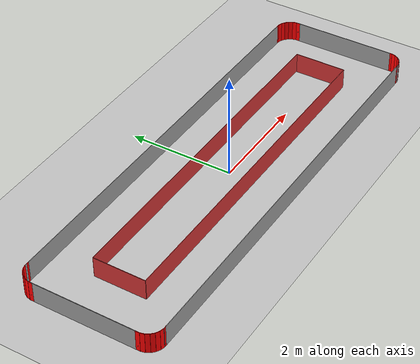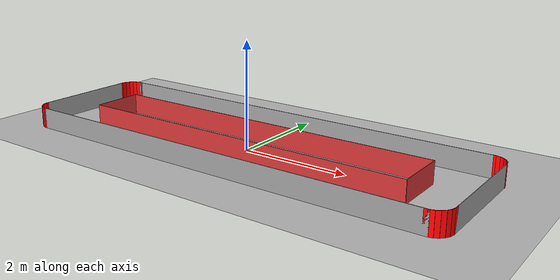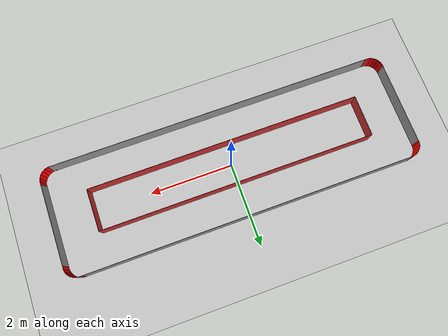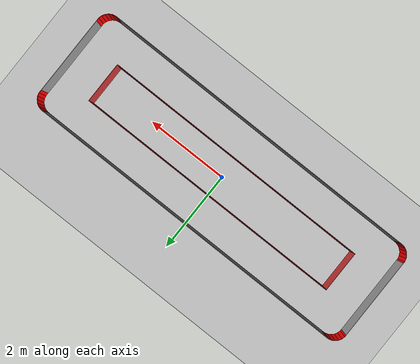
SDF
<?xml version="1.0" ?>
<sdf version="1.6">
  <world name="loop_world">
  <plugin name="gazebo_ros_factory" filename="libgazebo_ros_factory.so"/>
    <!-- 地面と太陽 -->
    <include>
      <uri>model://ground_plane</uri>
    </include>
    <include>
      <uri>model://sun</uri>
    </include>

<include>
  <uri>model://quarter_arc_wall</uri>
  <name>quarter_arc_wall_NE</name>
  <pose>3.95 1.0 0 0 0 1.57</pose>
</include>
<include>
  <uri>model://quarter_arc_wall</uri>
  <name>quarter_arc_wall_SW</name>
  <pose>-3.95 1.0 0 0 0 3.14</pose>
</include>
<include>
  <uri>model://quarter_arc_wall</uri>
  <name>quarter_arc_wall_SE</name>
  <pose>3.95 -1.0 0 0 0 0</pose>
</include>
<include>
  <uri>model://quarter_arc_wall</uri>
  <name>quarter_arc_wall_NW</name>
  <pose>-3.95 -1.0 0 0 0 -1.57</pose>
</include>
    <!-- ========================
         外枠壁（グレー）
         ======================== -->
    <model name="outer_wall_north">
      <static>true</static>
      <link name="link">
        <collision name="collision">
          <geometry><box><size>8 0.01 0.4</size></box></geometry>
        </collision>
        <visual name="visual">
          <geometry><box><size>8 0.01 0.4</size></box></geometry>
          <material><ambient>0.6 0.6 0.6 1</ambient></material>
        </visual>
        <pose>0 1.3 0.2 0 0 0</pose>
      </link>
    </model>

    <model name="outer_wall_south">
      <static>true</static>
      <link name="link">
        <collision name="collision">
          <geometry><box><size>8 0.01 0.4</size></box></geometry>
        </collision>
        <visual name="visual">
          <geometry><box><size>8 0.01 0.4</size></box></geometry>
          <material><ambient>0.6 0.6 0.6 1</ambient></material>
        </visual>
        <pose>0 -1.3 0.2 0 0 0</pose>
      </link>
    </model>

    <model name="outer_wall_east">
      <static>true</static>
      <link name="link">
        <collision name="collision">
          <geometry><box><size>0.01 2.0 0.4</size></box></geometry>
        </collision>
        <visual name="visual">
          <geometry><box><size>0.01 2.0 0.4</size></box></geometry>
          <material><ambient>0.6 0.6 0.6 1</ambient></material>
        </visual>
        <pose>4.25 0 0.2 0 0 0</pose>
      </link>
    </model>

    <model name="outer_wall_west">
      <static>true</static>
      <link name="link">
        <collision name="collision">
          <geometry><box><size>0.01 2.0 0.4</size></box></geometry>
        </collision>
        <visual name="visual">
          <geometry><box><size>0.01 2.0 0.4</size></box></geometry>
          <material><ambient>0.6 0.6 0.6 1</ambient></material>
        </visual>
        <pose>-4.25 0 0.2 0 0 0</pose>
      </link>
    </model>

    <!-- ========================
         内枠壁（赤系）
         ======================== -->
    <model name="inner_wall_north">
      <static>true</static>
      <link name="link">
        <collision name="collision">
          <geometry><box><size>6.6 0.01 0.4</size></box></geometry>
        </collision>
        <visual name="visual">
          <geometry><box><size>6.6 0.01 0.4</size></box></geometry>
          <material><ambient>0.8 0.2 0.2 1</ambient></material>
        </visual>
        <pose>0 0.5 0.2 0 0 0</pose>
      </link>
    </model>

    <model name="inner_wall_south">
      <static>true</static>
      <link name="link">
        <collision name="collision">
          <geometry><box><size>6.6 0.01 0.4</size></box></geometry>
        </collision>
        <visual name="visual">
          <geometry><box><size>6.6 0.01 0.4</size></box></geometry>
          <material><ambient>0.8 0.2 0.2 1</ambient></material>
        </visual>
        <pose>0 -0.5 0.2 0 0 0</pose>
      </link>
    </model>

    <model name="inner_wall_east">
      <static>true</static>
      <link name="link">
        <collision name="collision">
          <geometry><box><size>0.01 1.0 0.4</size></box></geometry>
        </collision>
        <visual name="visual">
          <geometry><box><size>0.01 1.0 0.4</size></box></geometry>
          <material><ambient>0.8 0.2 0.2 1</ambient></material>
        </visual>
        <pose>3.3 0 0.2 0 0 0</pose>
      </link>
    </model>

    <model name="inner_wall_west">
      <static>true</static>
      <link name="link">
        <collision name="collision">
          <geometry><box><size>0.01 1.0 0.4</size></box></geometry>
        </collision>
        <visual name="visual">
          <geometry><box><size>0.01 1.0 0.4</size></box></geometry>
          <material><ambient>0.8 0.2 0.2 1</ambient></material>
        </visual>
        <pose>-3.3 0 0.2 0 0 0</pose>
      </link>
    </model>

  </world>
</sdf>

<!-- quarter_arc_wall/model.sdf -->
<sdf version="1.6">
  <model name="quarter_arc_wall">
    <static>true</static>

    🔽ここに貼る
    <link name="arc_link">

  <!-- 正確に接続する 1/4円弧 -->
  <!-- 7ピース、弧長 = 板長 -->
  <visual name="arc_piece_0">
    <pose>0.000000 -0.300000 0.2 0 0 0</pose>
    <geometry><box><size>0.0785 0.01 0.4</size></box></geometry>
    <material><ambient>1 0 0 1</ambient></material>
  </visual>
  <collision name="arc_piece_0">
    <pose>0.000000 -0.300000 0.2 0 0 0</pose>
    <geometry><box><size>0.0785 0.01 0.4</size></box></geometry>
  </collision>

  <visual name="arc_piece_1">
    <pose>0.077645 -0.290211 0.2 0 0 0.261799</pose>
    <geometry><box><size>0.0785 0.01 0.4</size></box></geometry>
    <material><ambient>1 0 0 1</ambient></material>
  </visual>
  <collision name="arc_piece_1">
    <pose>0.077645 -0.290211 0.2 0 0 0.261799</pose>
    <geometry><box><size>0.0785 0.01 0.4</size></box></geometry>
  </collision>

  <visual name="arc_piece_2">
    <pose>0.150000 -0.260422 0.2 0 0 0.523599</pose>
    <geometry><box><size>0.0785 0.01 0.4</size></box></geometry>
    <material><ambient>1 0 0 1</ambient></material>
  </visual>
  <collision name="arc_piece_2">
    <pose>0.150000 -0.260422 0.2 0 0 0.523599</pose>
    <geometry><box><size>0.0785 0.01 0.4</size></box></geometry>
  </collision>

  <visual name="arc_piece_3">
    <pose>0.212132 -0.212132 0.2 0 0 0.785398</pose>
    <geometry><box><size>0.0785 0.01 0.4</size></box></geometry>
    <material><ambient>1 0 0 1</ambient></material>
  </visual>
  <collision name="arc_piece_3">
    <pose>0.212132 -0.212132 0.2 0 0 0.785398</pose>
    <geometry><box><size>0.0785 0.01 0.4</size></box></geometry>
  </collision>

  <visual name="arc_piece_4">
    <pose>0.260422 -0.150000 0.2 0 0 1.047198</pose>
    <geometry><box><size>0.0785 0.01 0.4</size></box></geometry>
    <material><ambient>1 0 0 1</ambient></material>
  </visual>
  <collision name="arc_piece_4">
    <pose>0.260422 -0.150000 0.2 0 0 1.047198</pose>
    <geometry><box><size>0.0785 0.01 0.4</size></box></geometry>
  </collision>

  <visual name="arc_piece_5">
    <pose>0.290211 -0.077645 0.2 0 0 1.308997</pose>
    <geometry><box><size>0.0785 0.01 0.4</size></box></geometry>
    <material><ambient>1 0 0 1</ambient></material>
  </visual>
  <collision name="arc_piece_5">
    <pose>0.290211 -0.077645 0.2 0 0 1.308997</pose>
    <geometry><box><size>0.0785 0.01 0.4</size></box></geometry>
  </collision>

  <visual name="arc_piece_6">
    <pose>0.300000 0.000000 0.2 0 0 1.570796</pose>
    <geometry><box><size>0.0785 0.01 0.4</size></box></geometry>
    <material><ambient>1 0 0 1</ambient></material>
  </visual>
  <collision name="arc_piece_6">
    <pose>0.300000 0.000000 0.2 0 0 1.570796</pose>
    <geometry><box><size>0.0785 0.01 0.4</size></box></geometry>
  </collision>
</link>

</model>
</sdf>
